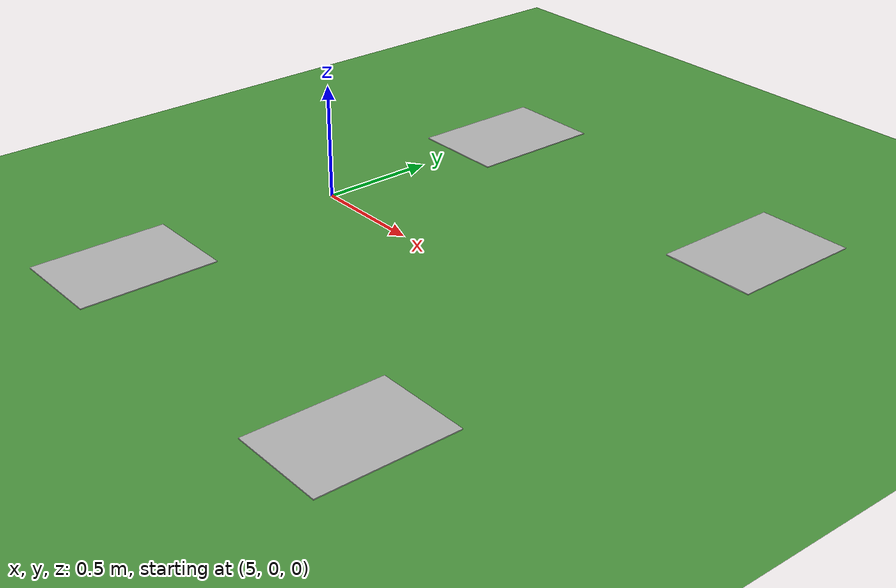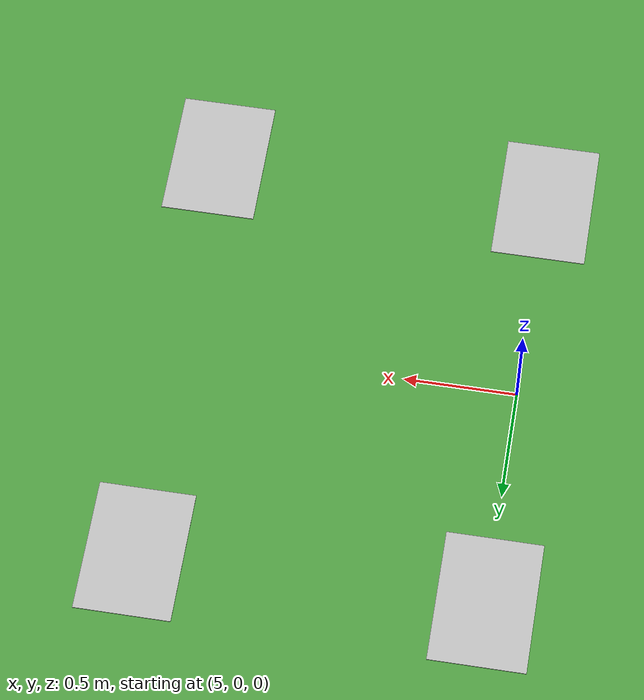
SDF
<sdf version="1.5">
 <world name="default">
  <model name="ground_plane">
   <static>true</static>
   <link name="link">
    <collision name="collision">
     <geometry><plane><normal>0 0 1</normal><size>5000 5000</size></plane></geometry>
     <surface><friction><ode><mu>100</mu><mu2>50</mu2></ode></friction></surface>
    </collision>
    <visual name="grass">
     <pose>0 0 -0.1 0 0 0</pose>
     <cast_shadows>false</cast_shadows>
     <geometry><plane><normal>0 0 1</normal><size>5000 5000</size></plane></geometry>
     <material>
      <script><uri>file://media/materials/scripts/gazebo.material</uri><name>Gazebo/Grass</name></script>
     </material>
    </visual>
   </link>
  </model>
  <include><name>Egg AR Tag</name><uri>model://ARtag</uri><pose>5 -1 0.004   0 0 0</pose></include>
  <include><name>Egg AR Tag 2</name><uri>model://ARtagNot</uri><pose>5 1 0.004   0 0 0</pose></include>
  <include><name>Egg AR Tag 3</name><uri>model://ARtagNot</uri><pose>6.5 1 0.004   0 0 0</pose></include>
  <include><name>Egg AR Tag 4</name><uri>model://ARtagNot</uri><pose>6.5 -1 0.004   0 0 0</pose></include>
  <physics name="default_physics" default="0" type="ode">
   <gravity>0 0 -9.8066</gravity>
   <ode>
    <solver>
     <type>quick</type>
     <iters>10</iters>
     <sor>1.3</sor>
     <use_dynamic_moi_rescaling>0</use_dynamic_moi_rescaling>
    </solver>
    <constraints>
     <cfm>0</cfm>
     <erp>0.2</erp>
     <contact_max_correcting_vel>100</contact_max_correcting_vel>
     <contact_surface_layer>0.001</contact_surface_layer>
    </constraints>
   </ode>
   <max_step_size>0.004</max_step_size>
   <real_time_factor>1</real_time_factor>
   <real_time_update_rate>250</real_time_update_rate>
   <magnetic_field>6.0e-6 2.3e-5 -4.2e-5</magnetic_field>
  </physics>
  <scene><sky><clouds><speed>8</speed></clouds></sky></scene>
 </world>
</sdf>

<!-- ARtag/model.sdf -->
<sdf version="1.5">
  <model name="ARtag">
    <pose>0 0 0 0 0 0</pose>
    <static>false</static>
    <link name="link">
      <inertial>
        <mass>1.0</mass>
        <inertia>
          <ixx>0</ixx>
          <ixy>0</ixy>
          <ixz>0</ixz>
          <iyy>0</iyy>
          <iyz>0</iyz>
          <izz>0</izz>
        </inertia>
      </inertial>
      <collision name="collision">
        <geometry>
          <box>
            <size>0.42 0.594 0.01</size>
          </box>
        </geometry>
        <surface>
          <contact>
            <ode>
              <max_vel>0.1</max_vel>
              <min_depth>0.001</min_depth>
            </ode>
          </contact>
        </surface>
      </collision>
      <visual name="visual">
        <geometry>
          <mesh>
            <uri>model://ARtag/meshes/ARtagV2A2.dae</uri>
          </mesh>
        </geometry>
      </visual>
    </link>
  </model>
</sdf>

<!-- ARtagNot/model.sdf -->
<sdf version="1.5">
  <model name="ARtagNot">
    <pose>0 0 0 0 0 0</pose>
    <static>false</static>
    <link name="link">
      <inertial>
        <mass>1.0</mass>
        <inertia>
          <ixx>0</ixx>
          <ixy>0</ixy>
          <ixz>0</ixz>
          <iyy>0</iyy>
          <iyz>0</iyz>
          <izz>0</izz>
        </inertia>
      </inertial>
      <collision name="collision">
        <geometry>
          <box>
            <size>0.42 0.594 0.01</size>
          </box>
        </geometry>
        <surface>
          <contact>
            <ode>
              <max_vel>0.1</max_vel>
              <min_depth>0.001</min_depth>
            </ode>
          </contact>
        </surface>
      </collision>
      <visual name="visual">
        <geometry>
          <mesh>
            <uri>model://ARtagNot/meshes/ARtagV2A2.dae</uri>
          </mesh>
        </geometry>
      </visual>
    </link>
  </model>
</sdf>
